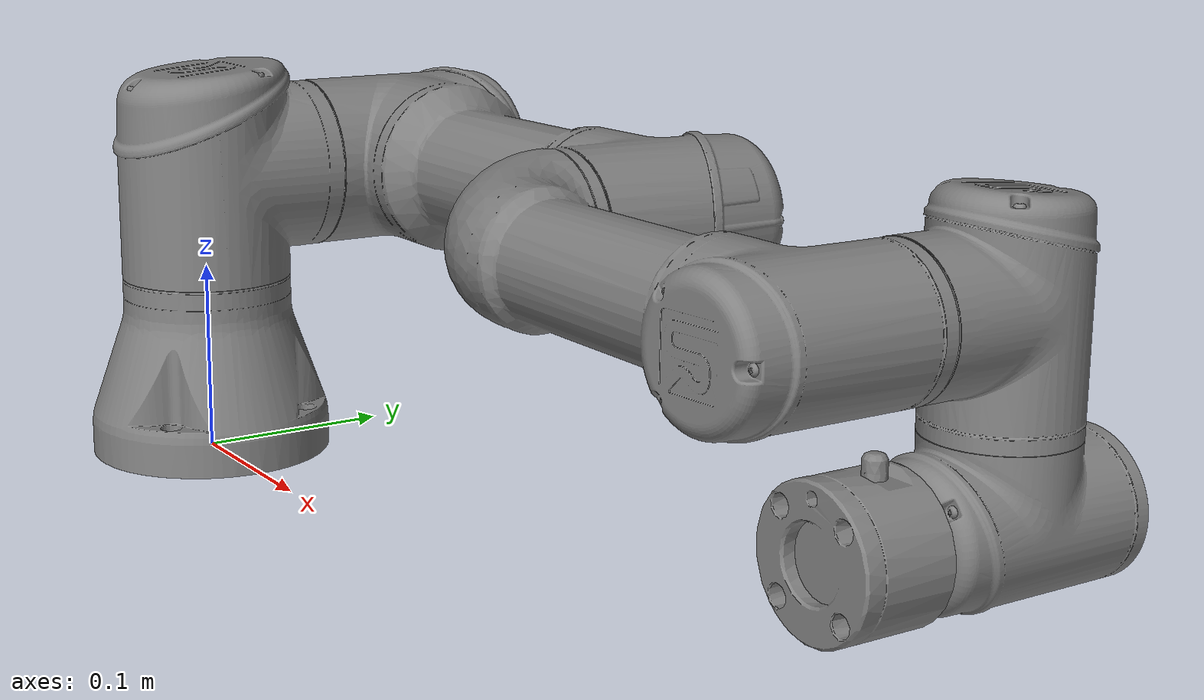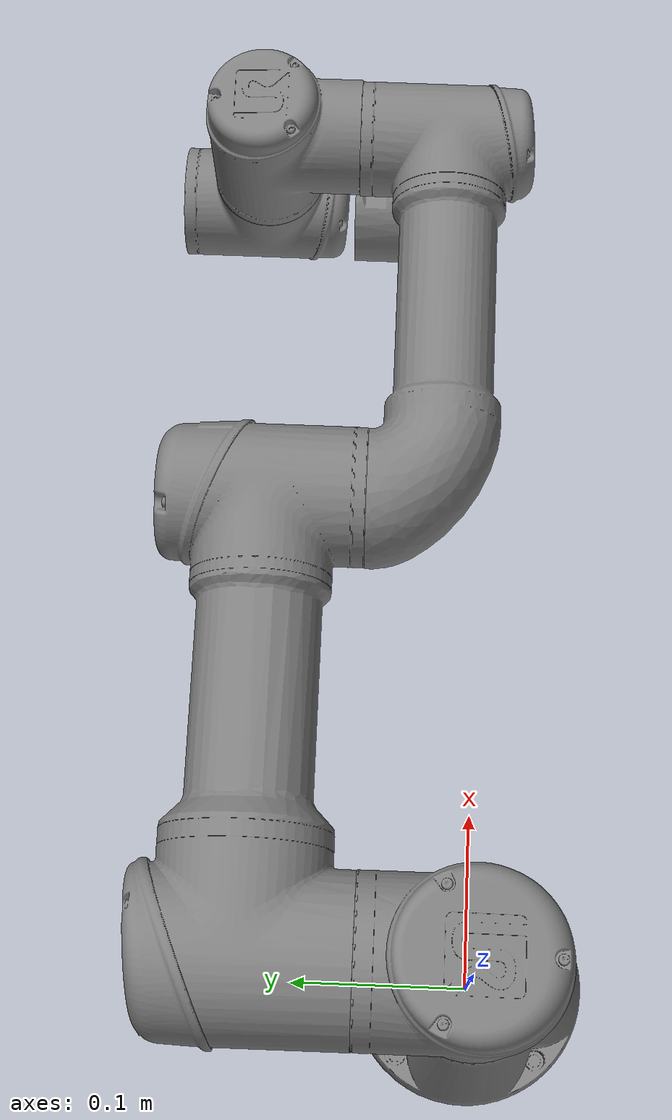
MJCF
<mujoco model="ur3e">
  <compiler angle="radian" meshdir="meshes/"/>

  <asset>
    <mesh name="base" file="base.stl"/>
    <mesh name="shoulder" file="shoulder.stl"/>
    <mesh name="upperarm" file="upperarm.stl"/>
    <mesh name="forearm" file="forearm.stl"/>
    <mesh name="wrist1" file="wrist1.stl"/>
    <mesh name="wrist2" file="wrist2.stl"/>
    <mesh name="wrist3" file="wrist3.stl"/>
  </asset>

  <worldbody>
    <geom pos="0 0 0" quat="-1 0 0 0" type="mesh" contype="0" conaffinity="0" group="1" density="0" mesh="base"/>
    <geom pos="0 0 0" quat="-1 0 0 0" type="mesh" mesh="base"/>
    <body name="shoulder_link" pos="0 0 0.15185" quat="0 0 0 1">
      <inertial pos="0 0 -0.02" quat="0.824382 0.56456 0.0308962 -0.0266815" mass="1.98" diaginertia="0.00276682 0.00263413 0.00207745"/>
      <joint name="shoulder_pan_joint" pos="0 0 0" axis="0 0 1" range="-6.28319 6.28319" actuatorfrcrange="-54 54"/>
      <geom quat="0 0 0 1" type="mesh" contype="0" conaffinity="0" group="1" density="0" mesh="shoulder"/>
      <geom quat="0 0 0 1" type="mesh" mesh="shoulder"/>
      <body name="upper_arm_link" quat="0.707107 0.707107 0 0">
        <inertial pos="-0.11355 0 0.1157" quat="0.511541 0.487878 0.493562 0.506653" mass="3.4445" diaginertia="0.0460286 0.0449496 0.00420725"/>
        <joint name="shoulder_lift_joint" pos="0 0 0" axis="0 0 1" range="-6.28319 6.28319" actuatorfrcrange="-54 54"/>
        <geom pos="0 0 0.12" quat="0.5 0.5 -0.5 -0.5" type="mesh" contype="0" conaffinity="0" group="1" density="0" mesh="upperarm"/>
        <geom pos="0 0 0.12" quat="0.5 0.5 -0.5 -0.5" type="mesh" mesh="upperarm"/>
        <body name="forearm_link" pos="-0.24355 0 0">
          <inertial pos="-0.1632 0 0.0238" quat="0.498615 0.501366 0.496974 0.503022" mass="1.437" diaginertia="0.0113396 0.0110896 0.00105099"/>
          <joint name="elbow_joint" pos="0 0 0" axis="0 0 1" range="-3.14159 3.14159" actuatorfrcrange="-28 28"/>
          <geom pos="0 0 0.027" quat="0.5 0.5 -0.5 -0.5" type="mesh" contype="0" conaffinity="0" group="1" density="0" mesh="forearm"/>
          <geom pos="0 0 0.027" quat="0.5 0.5 -0.5 -0.5" type="mesh" mesh="forearm"/>
          <body name="wrist_1_link" pos="-0.2132 0 0.13105">
            <inertial pos="0 -0.01 0" quat="0.982855 0.184339 -0.00385192 0.00065385" mass="0.871" diaginertia="0.000817416 0.000708389 0.000525695"/>
            <joint name="wrist_1_joint" pos="0 0 0" axis="0 0 1" range="-6.28319 6.28319" actuatorfrcrange="-9 9"/>
            <geom pos="0 0 -0.104" quat="0.707107 0.707107 0 0" type="mesh" contype="0" conaffinity="0" group="1" density="0" mesh="wrist1"/>
            <geom pos="0 0 -0.104" quat="0.707107 0.707107 0 0" type="mesh" mesh="wrist1"/>
            <body name="wrist_2_link" pos="0 -0.08535 -1.75056e-11" quat="0.707107 0.707107 0 0">
              <inertial pos="0 0.01 0" quat="0.997726 -0.0659421 0.00057165 -0.0139161" mass="0.805" diaginertia="0.000605916 0.000587282 0.000379501"/>
              <joint name="wrist_2_joint" pos="0 0 0" axis="0 0 1" range="-6.28319 6.28319" actuatorfrcrange="-9 9"/>
              <geom pos="0 0 -0.08535" quat="1 0 0 0" type="mesh" contype="0" conaffinity="0" group="1" density="0" mesh="wrist2"/>
              <geom pos="0 0 -0.08535" quat="1 0 0 0" type="mesh" mesh="wrist2"/>
              <body name="wrist_3_link" pos="0 0.0921 -1.889e-11" quat="0.707107 -0.707107 0 0">
                <inertial pos="0 0 -0.02" quat="-0.0596463 0.703375 0.0549048 0.706181" mass="0.261" diaginertia="0.000137102 0.000108615 0.000107983"/>
                <joint name="wrist_3_joint" pos="0 0 0" axis="0 0 1" actuatorfrcrange="-9 9"/>
                <geom pos="0 0 -0.0921" quat="0.707107 -0.707107 0 0" type="mesh" contype="0" conaffinity="0" group="1" density="0" mesh="wrist3"/>
                <geom pos="0 0 -0.0921" quat="0.707107 -0.707107 0 0" type="mesh" mesh="wrist3"/>
              </body>
            </body>
          </body>
        </body>
      </body>
    </body>
  </worldbody>
</mujoco>
